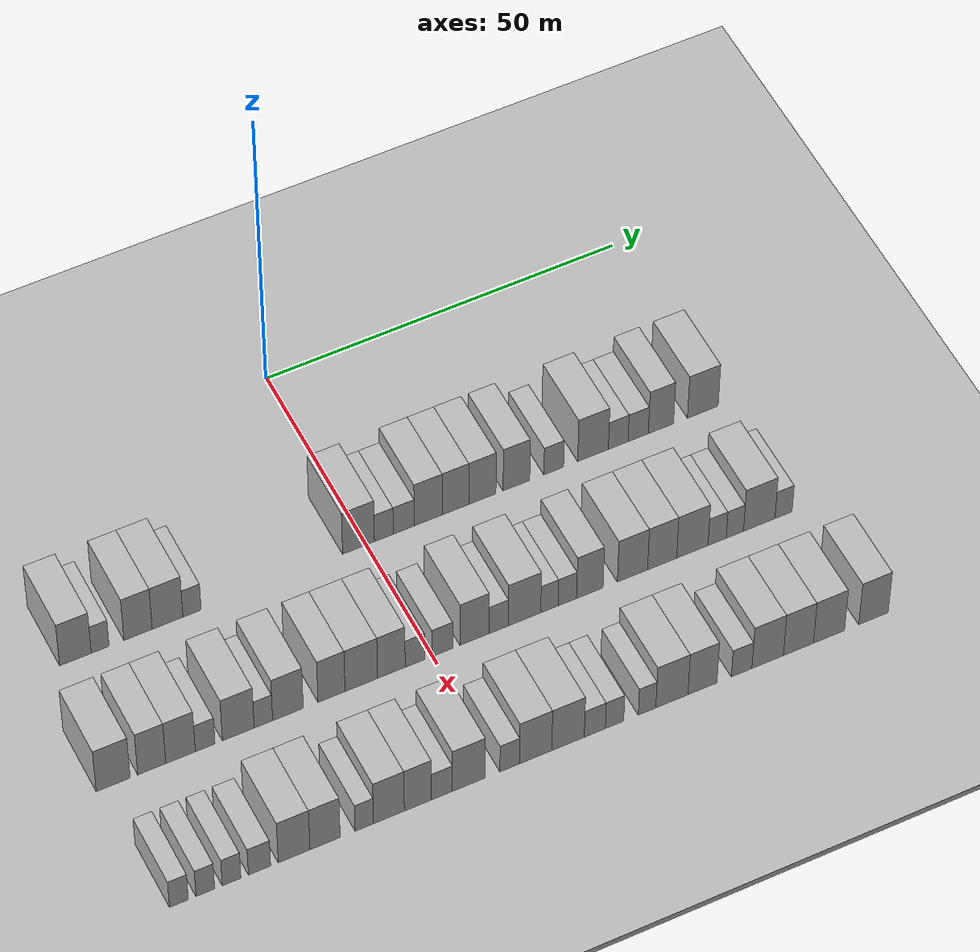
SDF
<sdf version="1.6">
 <world name="default">
  <include><name>ground_plane_1</name><uri>model://HANNAS_ground_plane</uri></include>
  <include>
   <name>ground_plane_2</name>
   <uri>model://HANNAS_ground_plane</uri>
   <pose>100 0 0  0 0 0</pose>
  </include>
  <model name="building_43">
   <static>1</static>
   <pose>25.0000 -39.8312 0 0.000000 0.000000 0.000000</pose>
   <link name="link">
    <pose>0 0 4.50 0 0 0</pose>
    <collision name="collision"><geometry><box><size>10.0000 4.2618 9.0000</size></box></geometry></collision>
    <visual name="visual">
     <cast_shadows>0</cast_shadows>
     <geometry><box><size>10.0000 4.2618 9.0000</size></box></geometry>
     <material>
      <script>
       <uri>model://HANNAS_wall/materials/scripts</uri>
       <uri>model://HANNAS_wall/materials/textures</uri>
       <name>vrc/HANNAS_wall</name>
      </script>
     </material>
    </visual>
   </link>
  </model>
  <model name="building_44">
   <static>1</static>
   <pose>25.0000 -36.4992 0 0.000000 0.000000 0.000000</pose>
   <link name="link">
    <pose>0 0 3.00 0 0 0</pose>
    <collision name="collision"><geometry><box><size>10.0000 2.4022 6.0000</size></box></geometry></collision>
    <visual name="visual">
     <cast_shadows>0</cast_shadows>
     <geometry><box><size>10.0000 2.4022 6.0000</size></box></geometry>
     <material>
      <script>
       <uri>model://HANNAS_wall/materials/scripts</uri>
       <uri>model://HANNAS_wall/materials/textures</uri>
       <name>vrc/HANNAS_wall</name>
      </script>
     </material>
    </visual>
   </link>
  </model>
  <model name="building_45">
   <static>1</static>
   <pose>25.0000 -31.3882 0 0.000000 0.000000 0.000000</pose>
   <link name="link">
    <pose>0 0 4.50 0 0 0</pose>
    <collision name="collision"><geometry><box><size>10.0000 3.8198 9.0000</size></box></geometry></collision>
    <visual name="visual">
     <cast_shadows>0</cast_shadows>
     <geometry><box><size>10.0000 3.8198 9.0000</size></box></geometry>
     <material>
      <script>
       <uri>model://HANNAS_wall/materials/scripts</uri>
       <uri>model://HANNAS_wall/materials/textures</uri>
       <name>vrc/HANNAS_wall</name>
      </script>
     </material>
    </visual>
   </link>
  </model>
  <model name="building_46">
   <static>1</static>
   <pose>25.0000 -27.3918 0 0.000000 0.000000 0.000000</pose>
   <link name="link">
    <pose>0 0 4.50 0 0 0</pose>
    <collision name="collision"><geometry><box><size>10.0000 4.1731 9.0000</size></box></geometry></collision>
    <visual name="visual">
     <cast_shadows>0</cast_shadows>
     <geometry><box><size>10.0000 4.1731 9.0000</size></box></geometry>
     <material>
      <script>
       <uri>model://HANNAS_wall/materials/scripts</uri>
       <uri>model://HANNAS_wall/materials/textures</uri>
       <name>vrc/HANNAS_wall</name>
      </script>
     </material>
    </visual>
   </link>
  </model>
  <model name="building_47">
   <static>1</static>
   <pose>25.0000 -24.0663 0 0.000000 0.000000 0.000000</pose>
   <link name="link">
    <pose>0 0 3.00 0 0 0</pose>
    <collision name="collision"><geometry><box><size>10.0000 2.4779 6.0000</size></box></geometry></collision>
    <visual name="visual">
     <cast_shadows>0</cast_shadows>
     <geometry><box><size>10.0000 2.4779 6.0000</size></box></geometry>
     <material>
      <script>
       <uri>model://HANNAS_wall/materials/scripts</uri>
       <uri>model://HANNAS_wall/materials/textures</uri>
       <name>vrc/HANNAS_wall</name>
      </script>
     </material>
    </visual>
   </link>
  </model>
  <model name="building_48">
   <static>1</static>
   <pose>25.0000 -1.1884 0 0.000000 0.000000 0.000000</pose>
   <link name="link">
    <pose>0 0 4.50 0 0 0</pose>
    <collision name="collision"><geometry><box><size>10.0000 4.4260 9.0000</size></box></geometry></collision>
    <visual name="visual">
     <cast_shadows>0</cast_shadows>
     <geometry><box><size>10.0000 4.4260 9.0000</size></box></geometry>
     <material>
      <script>
       <uri>model://HANNAS_wall/materials/scripts</uri>
       <uri>model://HANNAS_wall/materials/textures</uri>
       <name>vrc/HANNAS_wall</name>
      </script>
     </material>
    </visual>
   </link>
  </model>
  <model name="building_49">
   <static>1</static>
   <pose>25.0000 2.3365 0 0.000000 0.000000 0.000000</pose>
   <link name="link">
    <pose>0 0 3.00 0 0 0</pose>
    <collision name="collision"><geometry><box><size>10.0000 2.6238 6.0000</size></box></geometry></collision>
    <visual name="visual">
     <cast_shadows>0</cast_shadows>
     <geometry><box><size>10.0000 2.6238 6.0000</size></box></geometry>
     <material>
      <script>
       <uri>model://HANNAS_wall/materials/scripts</uri>
       <uri>model://HANNAS_wall/materials/textures</uri>
       <name>vrc/HANNAS_wall</name>
      </script>
     </material>
    </visual>
   </link>
  </model>
  <model name="building_50">
   <static>1</static>
   <pose>25.0000 5.1082 0 0.000000 0.000000 0.000000</pose>
   <link name="link">
    <pose>0 0 3.00 0 0 0</pose>
    <collision name="collision"><geometry><box><size>10.0000 2.9196 6.0000</size></box></geometry></collision>
    <visual name="visual">
     <cast_shadows>0</cast_shadows>
     <geometry><box><size>10.0000 2.9196 6.0000</size></box></geometry>
     <material>
      <script>
       <uri>model://HANNAS_wall/materials/scripts</uri>
       <uri>model://HANNAS_wall/materials/textures</uri>
       <name>vrc/HANNAS_wall</name>
      </script>
     </material>
    </visual>
   </link>
  </model>
  <model name="building_51">
   <static>1</static>
   <pose>25.0000 8.5382 0 0.000000 0.000000 0.000000</pose>
   <link name="link">
    <pose>0 0 4.50 0 0 0</pose>
    <collision name="collision"><geometry><box><size>10.0000 3.9403 9.0000</size></box></geometry></collision>
    <visual name="visual">
     <cast_shadows>0</cast_shadows>
     <geometry><box><size>10.0000 3.9403 9.0000</size></box></geometry>
     <material>
      <script>
       <uri>model://HANNAS_wall/materials/scripts</uri>
       <uri>model://HANNAS_wall/materials/textures</uri>
       <name>vrc/HANNAS_wall</name>
      </script>
     </material>
    </visual>
   </link>
  </model>
  <model name="building_52">
   <static>1</static>
   <pose>25.0000 12.3507 0 0.000000 0.000000 0.000000</pose>
   <link name="link">
    <pose>0 0 4.50 0 0 0</pose>
    <collision name="collision"><geometry><box><size>10.0000 3.6847 9.0000</size></box></geometry></collision>
    <visual name="visual">
     <cast_shadows>0</cast_shadows>
     <geometry><box><size>10.0000 3.6847 9.0000</size></box></geometry>
     <material>
      <script>
       <uri>model://HANNAS_wall/materials/scripts</uri>
       <uri>model://HANNAS_wall/materials/textures</uri>
       <name>vrc/HANNAS_wall</name>
      </script>
     </material>
    </visual>
   </link>
  </model>
  <model name="building_53">
   <static>1</static>
   <pose>25.0000 16.1093 0 0.000000 0.000000 0.000000</pose>
   <link name="link">
    <pose>0 0 4.50 0 0 0</pose>
    <collision name="collision"><geometry><box><size>10.0000 3.8325 9.0000</size></box></geometry></collision>
    <visual name="visual">
     <cast_shadows>0</cast_shadows>
     <geometry><box><size>10.0000 3.8325 9.0000</size></box></geometry>
     <material>
      <script>
       <uri>model://HANNAS_wall/materials/scripts</uri>
       <uri>model://HANNAS_wall/materials/textures</uri>
       <name>vrc/HANNAS_wall</name>
      </script>
     </material>
    </visual>
   </link>
  </model>
  <model name="building_54">
   <static>1</static>
   <pose>25.0000 20.9094 0 0.000000 0.000000 0.000000</pose>
   <link name="link">
    <pose>0 0 4.50 0 0 0</pose>
    <collision name="collision"><geometry><box><size>10.0000 3.7677 9.0000</size></box></geometry></collision>
    <visual name="visual">
     <cast_shadows>0</cast_shadows>
     <geometry><box><size>10.0000 3.7677 9.0000</size></box></geometry>
     <material>
      <script>
       <uri>model://HANNAS_wall/materials/scripts</uri>
       <uri>model://HANNAS_wall/materials/textures</uri>
       <name>vrc/HANNAS_wall</name>
      </script>
     </material>
    </visual>
   </link>
  </model>
  <model name="building_55">
   <static>1</static>
   <pose>25.0000 26.1912 0 0.000000 0.000000 0.000000</pose>
   <link name="link">
    <pose>0 0 3.00 0 0 0</pose>
    <collision name="collision"><geometry><box><size>10.0000 2.7959 6.0000</size></box></geometry></collision>
    <visual name="visual">
     <cast_shadows>0</cast_shadows>
     <geometry><box><size>10.0000 2.7959 6.0000</size></box></geometry>
     <material>
      <script>
       <uri>model://HANNAS_wall/materials/scripts</uri>
       <uri>model://HANNAS_wall/materials/textures</uri>
       <name>vrc/HANNAS_wall</name>
      </script>
     </material>
    </visual>
   </link>
  </model>
  <model name="building_56">
   <static>1</static>
   <pose>25.0000 31.7790 0 0.000000 0.000000 0.000000</pose>
   <link name="link">
    <pose>0 0 4.50 0 0 0</pose>
    <collision name="collision"><geometry><box><size>10.0000 4.3797 9.0000</size></box></geometry></collision>
    <visual name="visual">
     <cast_shadows>0</cast_shadows>
     <geometry><box><size>10.0000 4.3797 9.0000</size></box></geometry>
     <material>
      <script>
       <uri>model://HANNAS_wall/materials/scripts</uri>
       <uri>model://HANNAS_wall/materials/textures</uri>
       <name>vrc/HANNAS_wall</name>
      </script>
     </material>
    </visual>
   </link>
  </model>
  <model name="building_57">
   <static>1</static>
   <pose>25.0000 35.3784 0 0.000000 0.000000 0.000000</pose>
   <link name="link">
    <pose>0 0 3.00 0 0 0</pose>
    <collision name="collision"><geometry><box><size>10.0000 2.8191 6.0000</size></box></geometry></collision>
    <visual name="visual">
     <cast_shadows>0</cast_shadows>
     <geometry><box><size>10.0000 2.8191 6.0000</size></box></geometry>
     <material>
      <script>
       <uri>model://HANNAS_wall/materials/scripts</uri>
       <uri>model://HANNAS_wall/materials/textures</uri>
       <name>vrc/HANNAS_wall</name>
      </script>
     </material>
    </visual>
   </link>
  </model>
  <model name="building_58">
   <static>1</static>
   <pose>25.0000 38.2328 0 0.000000 0.000000 0.000000</pose>
   <link name="link">
    <pose>0 0 3.00 0 0 0</pose>
    <collision name="collision"><geometry><box><size>10.0000 2.8897 6.0000</size></box></geometry></collision>
    <visual name="visual">
     <cast_shadows>0</cast_shadows>
     <geometry><box><size>10.0000 2.8897 6.0000</size></box></geometry>
     <material>
      <script>
       <uri>model://HANNAS_wall/materials/scripts</uri>
       <uri>model://HANNAS_wall/materials/textures</uri>
       <name>vrc/HANNAS_wall</name>
      </script>
     </material>
    </visual>
   </link>
  </model>
  <model name="building_59">
   <static>1</static>
   <pose>25.0000 41.4894 0 0.000000 0.000000 0.000000</pose>
   <link name="link">
    <pose>0 0 4.50 0 0 0</pose>
    <collision name="collision"><geometry><box><size>10.0000 3.6237 9.0000</size></box></geometry></collision>
    <visual name="visual">
     <cast_shadows>0</cast_shadows>
     <geometry><box><size>10.0000 3.6237 9.0000</size></box></geometry>
     <material>
      <script>
       <uri>model://HANNAS_wall/materials/scripts</uri>
       <uri>model://HANNAS_wall/materials/textures</uri>
       <name>vrc/HANNAS_wall</name>
      </script>
     </material>
    </visual>
   </link>
  </model>
  <model name="building_60">
   <static>1</static>
   <pose>25.0000 47.5171 0 0.000000 0.000000 0.000000</pose>
   <link name="link">
    <pose>0 0 4.50 0 0 0</pose>
    <collision name="collision"><geometry><box><size>10.0000 4.4317 9.0000</size></box></geometry></collision>
    <visual name="visual">
     <cast_shadows>0</cast_shadows>
     <geometry><box><size>10.0000 4.4317 9.0000</size></box></geometry>
     <material>
      <script>
       <uri>model://HANNAS_wall/materials/scripts</uri>
       <uri>model://HANNAS_wall/materials/textures</uri>
       <name>vrc/HANNAS_wall</name>
      </script>
     </material>
    </visual>
   </link>
  </model>
  <model name="building_156">
   <static>1</static>
   <pose>44.0000 -43.1893 0 0.000000 0.000000 0.000000</pose>
   <link name="link">
    <pose>0 0 4.50 0 0 0</pose>
    <collision name="collision"><geometry><box><size>10.0000 4.4985 9.0000</size></box></geometry></collision>
    <visual name="visual">
     <cast_shadows>0</cast_shadows>
     <geometry><box><size>10.0000 4.4985 9.0000</size></box></geometry>
     <material>
      <script>
       <uri>model://HANNAS_wall/materials/scripts</uri>
       <uri>model://HANNAS_wall/materials/textures</uri>
       <name>vrc/HANNAS_wall</name>
      </script>
     </material>
    </visual>
   </link>
  </model>
  <model name="building_157">
   <static>1</static>
   <pose>44.0000 -38.0757 0 0.000000 0.000000 0.000000</pose>
   <link name="link">
    <pose>0 0 4.50 0 0 0</pose>
    <collision name="collision"><geometry><box><size>10.0000 3.7287 9.0000</size></box></geometry></collision>
    <visual name="visual">
     <cast_shadows>0</cast_shadows>
     <geometry><box><size>10.0000 3.7287 9.0000</size></box></geometry>
     <material>
      <script>
       <uri>model://HANNAS_wall/materials/scripts</uri>
       <uri>model://HANNAS_wall/materials/textures</uri>
       <name>vrc/HANNAS_wall</name>
      </script>
     </material>
    </visual>
   </link>
  </model>
  <model name="building_158">
   <static>1</static>
   <pose>44.0000 -34.2431 0 0.000000 0.000000 0.000000</pose>
   <link name="link">
    <pose>0 0 4.50 0 0 0</pose>
    <collision name="collision"><geometry><box><size>10.0000 3.9366 9.0000</size></box></geometry></collision>
    <visual name="visual">
     <cast_shadows>0</cast_shadows>
     <geometry><box><size>10.0000 3.9366 9.0000</size></box></geometry>
     <material>
      <script>
       <uri>model://HANNAS_wall/materials/scripts</uri>
       <uri>model://HANNAS_wall/materials/textures</uri>
       <name>vrc/HANNAS_wall</name>
      </script>
     </material>
    </visual>
   </link>
  </model>
  <model name="building_159">
   <static>1</static>
   <pose>44.0000 -30.9606 0 0.000000 0.000000 0.000000</pose>
   <link name="link">
    <pose>0 0 3.00 0 0 0</pose>
    <collision name="collision"><geometry><box><size>10.0000 2.6282 6.0000</size></box></geometry></collision>
    <visual name="visual">
     <cast_shadows>0</cast_shadows>
     <geometry><box><size>10.0000 2.6282 6.0000</size></box></geometry>
     <material>
      <script>
       <uri>model://HANNAS_wall/materials/scripts</uri>
       <uri>model://HANNAS_wall/materials/textures</uri>
       <name>vrc/HANNAS_wall</name>
      </script>
     </material>
    </visual>
   </link>
  </model>
  <model name="building_160">
   <static>1</static>
   <pose>44.0000 -26.5119 0 0.000000 0.000000 0.000000</pose>
   <link name="link">
    <pose>0 0 4.50 0 0 0</pose>
    <collision name="collision"><geometry><box><size>10.0000 4.2694 9.0000</size></box></geometry></collision>
    <visual name="visual">
     <cast_shadows>0</cast_shadows>
     <geometry><box><size>10.0000 4.2694 9.0000</size></box></geometry>
     <material>
      <script>
       <uri>model://HANNAS_wall/materials/scripts</uri>
       <uri>model://HANNAS_wall/materials/textures</uri>
       <name>vrc/HANNAS_wall</name>
      </script>
     </material>
    </visual>
   </link>
  </model>
  <model name="building_161">
   <static>1</static>
   <pose>44.0000 -23.1405 0 0.000000 0.000000 0.000000</pose>
   <link name="link">
    <pose>0 0 3.00 0 0 0</pose>
    <collision name="collision"><geometry><box><size>10.0000 2.4734 6.0000</size></box></geometry></collision>
    <visual name="visual">
     <cast_shadows>0</cast_shadows>
     <geometry><box><size>10.0000 2.4734 6.0000</size></box></geometry>
     <material>
      <script>
       <uri>model://HANNAS_wall/materials/scripts</uri>
       <uri>model://HANNAS_wall/materials/textures</uri>
       <name>vrc/HANNAS_wall</name>
      </script>
     </material>
    </visual>
   </link>
  </model>
  <model name="building_162">
   <static>1</static>
   <pose>44.0000 -19.8362 0 0.000000 0.000000 0.000000</pose>
   <link name="link">
    <pose>0 0 4.50 0 0 0</pose>
    <collision name="collision"><geometry><box><size>10.0000 4.1352 9.0000</size></box></geometry></collision>
    <visual name="visual">
     <cast_shadows>0</cast_shadows>
     <geometry><box><size>10.0000 4.1352 9.0000</size></box></geometry>
     <material>
      <script>
       <uri>model://HANNAS_wall/materials/scripts</uri>
       <uri>model://HANNAS_wall/materials/textures</uri>
       <name>vrc/HANNAS_wall</name>
      </script>
     </material>
    </visual>
   </link>
  </model>
  <model name="building_163">
   <static>1</static>
   <pose>44.0000 -13.9394 0 0.000000 0.000000 0.000000</pose>
   <link name="link">
    <pose>0 0 4.50 0 0 0</pose>
    <collision name="collision"><geometry><box><size>10.0000 3.6583 9.0000</size></box></geometry></collision>
    <visual name="visual">
     <cast_shadows>0</cast_shadows>
     <geometry><box><size>10.0000 3.6583 9.0000</size></box></geometry>
     <material>
      <script>
       <uri>model://HANNAS_wall/materials/scripts</uri>
       <uri>model://HANNAS_wall/materials/textures</uri>
       <name>vrc/HANNAS_wall</name>
      </script>
     </material>
    </visual>
   </link>
  </model>
  <model name="building_164">
   <static>1</static>
   <pose>44.0000 -9.8947 0 0.000000 0.000000 0.000000</pose>
   <link name="link">
    <pose>0 0 4.50 0 0 0</pose>
    <collision name="collision"><geometry><box><size>10.0000 4.4310 9.0000</size></box></geometry></collision>
    <visual name="visual">
     <cast_shadows>0</cast_shadows>
     <geometry><box><size>10.0000 4.4310 9.0000</size></box></geometry>
     <material>
      <script>
       <uri>model://HANNAS_wall/materials/scripts</uri>
       <uri>model://HANNAS_wall/materials/textures</uri>
       <name>vrc/HANNAS_wall</name>
      </script>
     </material>
    </visual>
   </link>
  </model>
  <model name="building_165">
   <static>1</static>
   <pose>44.0000 -5.7948 0 0.000000 0.000000 0.000000</pose>
   <link name="link">
    <pose>0 0 4.50 0 0 0</pose>
    <collision name="collision"><geometry><box><size>10.0000 3.7689 9.0000</size></box></geometry></collision>
    <visual name="visual">
     <cast_shadows>0</cast_shadows>
     <geometry><box><size>10.0000 3.7689 9.0000</size></box></geometry>
     <material>
      <script>
       <uri>model://HANNAS_wall/materials/scripts</uri>
       <uri>model://HANNAS_wall/materials/textures</uri>
       <name>vrc/HANNAS_wall</name>
      </script>
     </material>
    </visual>
   </link>
  </model>
  <model name="building_166">
   <static>1</static>
   <pose>44.0000 -2.5834 0 0.000000 0.000000 0.000000</pose>
   <link name="link">
    <pose>0 0 3.00 0 0 0</pose>
    <collision name="collision"><geometry><box><size>10.0000 2.6539 6.0000</size></box></geometry></collision>
    <visual name="visual">
     <cast_shadows>0</cast_shadows>
     <geometry><box><size>10.0000 2.6539 6.0000</size></box></geometry>
     <material>
      <script>
       <uri>model://HANNAS_wall/materials/scripts</uri>
       <uri>model://HANNAS_wall/materials/textures</uri>
       <name>vrc/HANNAS_wall</name>
      </script>
     </material>
    </visual>
   </link>
  </model>
  <model name="building_167">
   <static>1</static>
   <pose>44.0000 1.1687 0 0.000000 0.000000 0.000000</pose>
   <link name="link">
    <pose>0 0 3.00 0 0 0</pose>
    <collision name="collision"><geometry><box><size>10.0000 2.8502 6.0000</size></box></geometry></collision>
    <visual name="visual">
     <cast_shadows>0</cast_shadows>
     <geometry><box><size>10.0000 2.8502 6.0000</size></box></geometry>
     <material>
      <script>
       <uri>model://HANNAS_wall/materials/scripts</uri>
       <uri>model://HANNAS_wall/materials/textures</uri>
       <name>vrc/HANNAS_wall</name>
      </script>
     </material>
    </visual>
   </link>
  </model>
  <model name="building_168">
   <static>1</static>
   <pose>44.0000 5.5933 0 0.000000 0.000000 0.000000</pose>
   <link name="link">
    <pose>0 0 4.50 0 0 0</pose>
    <collision name="collision"><geometry><box><size>10.0000 3.9991 9.0000</size></box></geometry></collision>
    <visual name="visual">
     <cast_shadows>0</cast_shadows>
     <geometry><box><size>10.0000 3.9991 9.0000</size></box></geometry>
     <material>
      <script>
       <uri>model://HANNAS_wall/materials/scripts</uri>
       <uri>model://HANNAS_wall/materials/textures</uri>
       <name>vrc/HANNAS_wall</name>
      </script>
     </material>
    </visual>
   </link>
  </model>
  <model name="building_169">
   <static>1</static>
   <pose>44.0000 8.9315 0 0.000000 0.000000 0.000000</pose>
   <link name="link">
    <pose>0 0 3.00 0 0 0</pose>
    <collision name="collision"><geometry><box><size>10.0000 2.6774 6.0000</size></box></geometry></collision>
    <visual name="visual">
     <cast_shadows>0</cast_shadows>
     <geometry><box><size>10.0000 2.6774 6.0000</size></box></geometry>
     <material>
      <script>
       <uri>model://HANNAS_wall/materials/scripts</uri>
       <uri>model://HANNAS_wall/materials/textures</uri>
       <name>vrc/HANNAS_wall</name>
      </script>
     </material>
    </visual>
   </link>
  </model>
  <model name="building_170">
   <static>1</static>
   <pose>44.0000 12.5174 0 0.000000 0.000000 0.000000</pose>
   <link name="link">
    <pose>0 0 4.50 0 0 0</pose>
    <collision name="collision"><geometry><box><size>10.0000 4.4943 9.0000</size></box></geometry></collision>
    <visual name="visual">
     <cast_shadows>0</cast_shadows>
     <geometry><box><size>10.0000 4.4943 9.0000</size></box></geometry>
     <material>
      <script>
       <uri>model://HANNAS_wall/materials/scripts</uri>
       <uri>model://HANNAS_wall/materials/textures</uri>
       <name>vrc/HANNAS_wall</name>
      </script>
     </material>
    </visual>
   </link>
  </model>
  <model name="building_171">
   <static>1</static>
   <pose>44.0000 15.9725 0 0.000000 0.000000 0.000000</pose>
   <link name="link">
    <pose>0 0 3.00 0 0 0</pose>
    <collision name="collision"><geometry><box><size>10.0000 2.4158 6.0000</size></box></geometry></collision>
    <visual name="visual">
     <cast_shadows>0</cast_shadows>
     <geometry><box><size>10.0000 2.4158 6.0000</size></box></geometry>
     <material>
      <script>
       <uri>model://HANNAS_wall/materials/scripts</uri>
       <uri>model://HANNAS_wall/materials/textures</uri>
       <name>vrc/HANNAS_wall</name>
      </script>
     </material>
    </visual>
   </link>
  </model>
  <model name="building_172">
   <static>1</static>
   <pose>44.0000 18.4594 0 0.000000 0.000000 0.000000</pose>
   <link name="link">
    <pose>0 0 3.00 0 0 0</pose>
    <collision name="collision"><geometry><box><size>10.0000 2.5581 6.0000</size></box></geometry></collision>
    <visual name="visual">
     <cast_shadows>0</cast_shadows>
     <geometry><box><size>10.0000 2.5581 6.0000</size></box></geometry>
     <material>
      <script>
       <uri>model://HANNAS_wall/materials/scripts</uri>
       <uri>model://HANNAS_wall/materials/textures</uri>
       <name>vrc/HANNAS_wall</name>
      </script>
     </material>
    </visual>
   </link>
  </model>
  <model name="building_173">
   <static>1</static>
   <pose>44.0000 21.5950 0 0.000000 0.000000 0.000000</pose>
   <link name="link">
    <pose>0 0 4.50 0 0 0</pose>
    <collision name="collision"><geometry><box><size>10.0000 3.7132 9.0000</size></box></geometry></collision>
    <visual name="visual">
     <cast_shadows>0</cast_shadows>
     <geometry><box><size>10.0000 3.7132 9.0000</size></box></geometry>
     <material>
      <script>
       <uri>model://HANNAS_wall/materials/scripts</uri>
       <uri>model://HANNAS_wall/materials/textures</uri>
       <name>vrc/HANNAS_wall</name>
      </script>
     </material>
    </visual>
   </link>
  </model>
  <model name="building_174">
   <static>1</static>
   <pose>44.0000 27.5689 0 0.000000 0.000000 0.000000</pose>
   <link name="link">
    <pose>0 0 4.50 0 0 0</pose>
    <collision name="collision"><geometry><box><size>10.0000 4.2346 9.0000</size></box></geometry></collision>
    <visual name="visual">
     <cast_shadows>0</cast_shadows>
     <geometry><box><size>10.0000 4.2346 9.0000</size></box></geometry>
     <material>
      <script>
       <uri>model://HANNAS_wall/materials/scripts</uri>
       <uri>model://HANNAS_wall/materials/textures</uri>
       <name>vrc/HANNAS_wall</name>
      </script>
     </material>
    </visual>
   </link>
  </model>
  <model name="building_175">
   <static>1</static>
   <pose>44.0000 31.7384 0 0.000000 0.000000 0.000000</pose>
   <link name="link">
    <pose>0 0 4.50 0 0 0</pose>
    <collision name="collision"><geometry><box><size>10.0000 4.1044 9.0000</size></box></geometry></collision>
    <visual name="visual">
     <cast_shadows>0</cast_shadows>
     <geometry><box><size>10.0000 4.1044 9.0000</size></box></geometry>
     <material>
      <script>
       <uri>model://HANNAS_wall/materials/scripts</uri>
       <uri>model://HANNAS_wall/materials/textures</uri>
       <name>vrc/HANNAS_wall</name>
      </script>
     </material>
    </visual>
   </link>
  </model>
  <model name="building_176">
   <static>1</static>
   <pose>44.0000 36.0074 0 0.000000 0.000000 0.000000</pose>
   <link name="link">
    <pose>0 0 4.50 0 0 0</pose>
    <collision name="collision"><geometry><box><size>10.0000 4.4337 9.0000</size></box></geometry></collision>
    <visual name="visual">
     <cast_shadows>0</cast_shadows>
     <geometry><box><size>10.0000 4.4337 9.0000</size></box></geometry>
     <material>
      <script>
       <uri>model://HANNAS_wall/materials/scripts</uri>
       <uri>model://HANNAS_wall/materials/textures</uri>
       <name>vrc/HANNAS_wall</name>
      </script>
     </material>
    </visual>
   </link>
  </model>
  <model name="building_177">
   <static>1</static>
   <pose>44.0000 39.5148 0 0.000000 0.000000 0.000000</pose>
   <link name="link">
    <pose>0 0 3.00 0 0 0</pose>
    <collision name="collision"><geometry><box><size>10.0000 2.5810 6.0000</size></box></geometry></collision>
    <visual name="visual">
     <cast_shadows>0</cast_shadows>
     <geometry><box><size>10.0000 2.5810 6.0000</size></box></geometry>
     <material>
      <script>
       <uri>model://HANNAS_wall/materials/scripts</uri>
       <uri>model://HANNAS_wall/materials/textures</uri>
       <name>vrc/HANNAS_wall</name>
      </script>
     </material>
    </visual>
   </link>
  </model>
  <model name="building_178">
   <static>1</static>
   <pose>44.0000 42.0296 0 0.000000 0.000000 0.000000</pose>
   <link name="link">
    <pose>0 0 3.00 0 0 0</pose>
    <collision name="collision"><geometry><box><size>10.0000 2.4487 6.0000</size></box></geometry></collision>
    <visual name="visual">
     <cast_shadows>0</cast_shadows>
     <geometry><box><size>10.0000 2.4487 6.0000</size></box></geometry>
     <material>
      <script>
       <uri>model://HANNAS_wall/materials/scripts</uri>
       <uri>model://HANNAS_wall/materials/textures</uri>
       <name>vrc/HANNAS_wall</name>
      </script>
     </material>
    </visual>
   </link>
  </model>
  <model name="building_179">
   <static>1</static>
   <pose>44.0000 45.4891 0 0.000000 0.000000 0.000000</pose>
   <link name="link">
    <pose>0 0 4.50 0 0 0</pose>
    <collision name="collision"><geometry><box><size>10.0000 4.4703 9.0000</size></box></geometry></collision>
    <visual name="visual">
     <cast_shadows>0</cast_shadows>
     <geometry><box><size>10.0000 4.4703 9.0000</size></box></geometry>
     <material>
      <script>
       <uri>model://HANNAS_wall/materials/scripts</uri>
       <uri>model://HANNAS_wall/materials/textures</uri>
       <name>vrc/HANNAS_wall</name>
      </script>
     </material>
    </visual>
   </link>
  </model>
  <model name="building_180">
   <static>1</static>
   <pose>44.0000 48.9495 0 0.000000 0.000000 0.000000</pose>
   <link name="link">
    <pose>0 0 3.00 0 0 0</pose>
    <collision name="collision"><geometry><box><size>10.0000 2.4504 6.0000</size></box></geometry></collision>
    <visual name="visual">
     <cast_shadows>0</cast_shadows>
     <geometry><box><size>10.0000 2.4504 6.0000</size></box></geometry>
     <material>
      <script>
       <uri>model://HANNAS_wall/materials/scripts</uri>
       <uri>model://HANNAS_wall/materials/textures</uri>
       <name>vrc/HANNAS_wall</name>
      </script>
     </material>
    </visual>
   </link>
  </model>
  <model name="building_274">
   <static>1</static>
   <pose>63.0000 -43.0745 0 0.000000 0.000000 0.000000</pose>
   <link name="link">
    <pose>0 0 3.00 0 0 0</pose>
    <collision name="collision"><geometry><box><size>10.0000 2.4702 6.0000</size></box></geometry></collision>
    <visual name="visual">
     <cast_shadows>0</cast_shadows>
     <geometry><box><size>10.0000 2.4702 6.0000</size></box></geometry>
     <material>
      <script>
       <uri>model://HANNAS_wall/materials/scripts</uri>
       <uri>model://HANNAS_wall/materials/textures</uri>
       <name>vrc/HANNAS_wall</name>
      </script>
     </material>
    </visual>
   </link>
  </model>
  <model name="building_275">
   <static>1</static>
   <pose>63.0000 -39.6158 0 0.000000 0.000000 0.000000</pose>
   <link name="link">
    <pose>0 0 3.00 0 0 0</pose>
    <collision name="collision"><geometry><box><size>10.0000 2.4472 6.0000</size></box></geometry></collision>
    <visual name="visual">
     <cast_shadows>0</cast_shadows>
     <geometry><box><size>10.0000 2.4472 6.0000</size></box></geometry>
     <material>
      <script>
       <uri>model://HANNAS_wall/materials/scripts</uri>
       <uri>model://HANNAS_wall/materials/textures</uri>
       <name>vrc/HANNAS_wall</name>
      </script>
     </material>
    </visual>
   </link>
  </model>
  <model name="building_276">
   <static>1</static>
   <pose>63.0000 -36.1729 0 0.000000 0.000000 0.000000</pose>
   <link name="link">
    <pose>0 0 3.00 0 0 0</pose>
    <collision name="collision"><geometry><box><size>10.0000 2.4386 6.0000</size></box></geometry></collision>
    <visual name="visual">
     <cast_shadows>0</cast_shadows>
     <geometry><box><size>10.0000 2.4386 6.0000</size></box></geometry>
     <material>
      <script>
       <uri>model://HANNAS_wall/materials/scripts</uri>
       <uri>model://HANNAS_wall/materials/textures</uri>
       <name>vrc/HANNAS_wall</name>
      </script>
     </material>
    </visual>
   </link>
  </model>
  <model name="building_277">
   <static>1</static>
   <pose>63.0000 -32.4886 0 0.000000 0.000000 0.000000</pose>
   <link name="link">
    <pose>0 0 3.00 0 0 0</pose>
    <collision name="collision"><geometry><box><size>10.0000 2.9301 6.0000</size></box></geometry></collision>
    <visual name="visual">
     <cast_shadows>0</cast_shadows>
     <geometry><box><size>10.0000 2.9301 6.0000</size></box></geometry>
     <material>
      <script>
       <uri>model://HANNAS_wall/materials/scripts</uri>
       <uri>model://HANNAS_wall/materials/textures</uri>
       <name>vrc/HANNAS_wall</name>
      </script>
     </material>
    </visual>
   </link>
  </model>
  <model name="building_278">
   <static>1</static>
   <pose>63.0000 -27.9201 0 0.000000 0.000000 0.000000</pose>
   <link name="link">
    <pose>0 0 4.50 0 0 0</pose>
    <collision name="collision"><geometry><box><size>10.0000 4.2068 9.0000</size></box></geometry></collision>
    <visual name="visual">
     <cast_shadows>0</cast_shadows>
     <geometry><box><size>10.0000 4.2068 9.0000</size></box></geometry>
     <material>
      <script>
       <uri>model://HANNAS_wall/materials/scripts</uri>
       <uri>model://HANNAS_wall/materials/textures</uri>
       <name>vrc/HANNAS_wall</name>
      </script>
     </material>
    </visual>
   </link>
  </model>
  <model name="building_279">
   <static>1</static>
   <pose>63.0000 -23.8160 0 0.000000 0.000000 0.000000</pose>
   <link name="link">
    <pose>0 0 4.50 0 0 0</pose>
    <collision name="collision"><geometry><box><size>10.0000 4.0014 9.0000</size></box></geometry></collision>
    <visual name="visual">
     <cast_shadows>0</cast_shadows>
     <geometry><box><size>10.0000 4.0014 9.0000</size></box></geometry>
     <material>
      <script>
       <uri>model://HANNAS_wall/materials/scripts</uri>
       <uri>model://HANNAS_wall/materials/textures</uri>
       <name>vrc/HANNAS_wall</name>
      </script>
     </material>
    </visual>
   </link>
  </model>
  <model name="building_280">
   <static>1</static>
   <pose>63.0000 -18.5930 0 0.000000 0.000000 0.000000</pose>
   <link name="link">
    <pose>0 0 3.00 0 0 0</pose>
    <collision name="collision"><geometry><box><size>10.0000 2.4447 6.0000</size></box></geometry></collision>
    <visual name="visual">
     <cast_shadows>0</cast_shadows>
     <geometry><box><size>10.0000 2.4447 6.0000</size></box></geometry>
     <material>
      <script>
       <uri>model://HANNAS_wall/materials/scripts</uri>
       <uri>model://HANNAS_wall/materials/textures</uri>
       <name>vrc/HANNAS_wall</name>
      </script>
     </material>
    </visual>
   </link>
  </model>
  <model name="building_281">
   <static>1</static>
   <pose>63.0000 -15.3080 0 0.000000 0.000000 0.000000</pose>
   <link name="link">
    <pose>0 0 4.50 0 0 0</pose>
    <collision name="collision"><geometry><box><size>10.0000 4.1254 9.0000</size></box></geometry></collision>
    <visual name="visual">
     <cast_shadows>0</cast_shadows>
     <geometry><box><size>10.0000 4.1254 9.0000</size></box></geometry>
     <material>
      <script>
       <uri>model://HANNAS_wall/materials/scripts</uri>
       <uri>model://HANNAS_wall/materials/textures</uri>
       <name>vrc/HANNAS_wall</name>
      </script>
     </material>
    </visual>
   </link>
  </model>
  <model name="building_282">
   <static>1</static>
   <pose>63.0000 -11.4247 0 0.000000 0.000000 0.000000</pose>
   <link name="link">
    <pose>0 0 4.50 0 0 0</pose>
    <collision name="collision"><geometry><box><size>10.0000 3.6410 9.0000</size></box></geometry></collision>
    <visual name="visual">
     <cast_shadows>0</cast_shadows>
     <geometry><box><size>10.0000 3.6410 9.0000</size></box></geometry>
     <material>
      <script>
       <uri>model://HANNAS_wall/materials/scripts</uri>
       <uri>model://HANNAS_wall/materials/textures</uri>
       <name>vrc/HANNAS_wall</name>
      </script>
     </material>
    </visual>
   </link>
  </model>
  <model name="building_283">
   <static>1</static>
   <pose>63.0000 -8.1879 0 0.000000 0.000000 0.000000</pose>
   <link name="link">
    <pose>0 0 3.00 0 0 0</pose>
    <collision name="collision"><geometry><box><size>10.0000 2.8327 6.0000</size></box></geometry></collision>
    <visual name="visual">
     <cast_shadows>0</cast_shadows>
     <geometry><box><size>10.0000 2.8327 6.0000</size></box></geometry>
     <material>
      <script>
       <uri>model://HANNAS_wall/materials/scripts</uri>
       <uri>model://HANNAS_wall/materials/textures</uri>
       <name>vrc/HANNAS_wall</name>
      </script>
     </material>
    </visual>
   </link>
  </model>
  <model name="building_284">
   <static>1</static>
   <pose>63.0000 -4.5696 0 0.000000 0.000000 0.000000</pose>
   <link name="link">
    <pose>0 0 4.50 0 0 0</pose>
    <collision name="collision"><geometry><box><size>10.0000 4.4039 9.0000</size></box></geometry></collision>
    <visual name="visual">
     <cast_shadows>0</cast_shadows>
     <geometry><box><size>10.0000 4.4039 9.0000</size></box></geometry>
     <material>
      <script>
       <uri>model://HANNAS_wall/materials/scripts</uri>
       <uri>model://HANNAS_wall/materials/textures</uri>
       <name>vrc/HANNAS_wall</name>
      </script>
     </material>
    </visual>
   </link>
  </model>
  <model name="building_285">
   <static>1</static>
   <pose>63.0000 0.9605 0 0.000000 0.000000 0.000000</pose>
   <link name="link">
    <pose>0 0 3.00 0 0 0</pose>
    <collision name="collision"><geometry><box><size>10.0000 2.6564 6.0000</size></box></geometry></collision>
    <visual name="visual">
     <cast_shadows>0</cast_shadows>
     <geometry><box><size>10.0000 2.6564 6.0000</size></box></geometry>
     <material>
      <script>
       <uri>model://HANNAS_wall/materials/scripts</uri>
       <uri>model://HANNAS_wall/materials/textures</uri>
       <name>vrc/HANNAS_wall</name>
      </script>
     </material>
    </visual>
   </link>
  </model>
  <model name="building_286">
   <static>1</static>
   <pose>63.0000 4.4821 0 0.000000 0.000000 0.000000</pose>
   <link name="link">
    <pose>0 0 4.50 0 0 0</pose>
    <collision name="collision"><geometry><box><size>10.0000 4.3867 9.0000</size></box></geometry></collision>
    <visual name="visual">
     <cast_shadows>0</cast_shadows>
     <geometry><box><size>10.0000 4.3867 9.0000</size></box></geometry>
     <material>
      <script>
       <uri>model://HANNAS_wall/materials/scripts</uri>
       <uri>model://HANNAS_wall/materials/textures</uri>
       <name>vrc/HANNAS_wall</name>
      </script>
     </material>
    </visual>
   </link>
  </model>
  <model name="building_287">
   <static>1</static>
   <pose>63.0000 8.8987 0 0.000000 0.000000 0.000000</pose>
   <link name="link">
    <pose>0 0 4.50 0 0 0</pose>
    <collision name="collision"><geometry><box><size>10.0000 4.4465 9.0000</size></box></geometry></collision>
    <visual name="visual">
     <cast_shadows>0</cast_shadows>
     <geometry><box><size>10.0000 4.4465 9.0000</size></box></geometry>
     <material>
      <script>
       <uri>model://HANNAS_wall/materials/scripts</uri>
       <uri>model://HANNAS_wall/materials/textures</uri>
       <name>vrc/HANNAS_wall</name>
      </script>
     </material>
    </visual>
   </link>
  </model>
  <model name="building_288">
   <static>1</static>
   <pose>63.0000 12.5663 0 0.000000 0.000000 0.000000</pose>
   <link name="link">
    <pose>0 0 3.00 0 0 0</pose>
    <collision name="collision"><geometry><box><size>10.0000 2.8886 6.0000</size></box></geometry></collision>
    <visual name="visual">
     <cast_shadows>0</cast_shadows>
     <geometry><box><size>10.0000 2.8886 6.0000</size></box></geometry>
     <material>
      <script>
       <uri>model://HANNAS_wall/materials/scripts</uri>
       <uri>model://HANNAS_wall/materials/textures</uri>
       <name>vrc/HANNAS_wall</name>
      </script>
     </material>
    </visual>
   </link>
  </model>
  <model name="building_289">
   <static>1</static>
   <pose>63.0000 15.2698 0 0.000000 0.000000 0.000000</pose>
   <link name="link">
    <pose>0 0 3.00 0 0 0</pose>
    <collision name="collision"><geometry><box><size>10.0000 2.5185 6.0000</size></box></geometry></collision>
    <visual name="visual">
     <cast_shadows>0</cast_shadows>
     <geometry><box><size>10.0000 2.5185 6.0000</size></box></geometry>
     <material>
      <script>
       <uri>model://HANNAS_wall/materials/scripts</uri>
       <uri>model://HANNAS_wall/materials/textures</uri>
       <name>vrc/HANNAS_wall</name>
      </script>
     </material>
    </visual>
   </link>
  </model>
  <model name="building_290">
   <static>1</static>
   <pose>63.0000 19.7379 0 0.000000 0.000000 0.000000</pose>
   <link name="link">
    <pose>0 0 3.00 0 0 0</pose>
    <collision name="collision"><geometry><box><size>10.0000 2.4177 6.0000</size></box></geometry></collision>
    <visual name="visual">
     <cast_shadows>0</cast_shadows>
     <geometry><box><size>10.0000 2.4177 6.0000</size></box></geometry>
     <material>
      <script>
       <uri>model://HANNAS_wall/materials/scripts</uri>
       <uri>model://HANNAS_wall/materials/textures</uri>
       <name>vrc/HANNAS_wall</name>
      </script>
     </material>
    </visual>
   </link>
  </model>
  <model name="building_291">
   <static>1</static>
   <pose>63.0000 23.1680 0 0.000000 0.000000 0.000000</pose>
   <link name="link">
    <pose>0 0 4.50 0 0 0</pose>
    <collision name="collision"><geometry><box><size>10.0000 4.4425 9.0000</size></box></geometry></collision>
    <visual name="visual">
     <cast_shadows>0</cast_shadows>
     <geometry><box><size>10.0000 4.4425 9.0000</size></box></geometry>
     <material>
      <script>
       <uri>model://HANNAS_wall/materials/scripts</uri>
       <uri>model://HANNAS_wall/materials/textures</uri>
       <name>vrc/HANNAS_wall</name>
      </script>
     </material>
    </visual>
   </link>
  </model>
  <model name="building_292">
   <static>1</static>
   <pose>63.0000 27.3973 0 0.000000 0.000000 0.000000</pose>
   <link name="link">
    <pose>0 0 4.50 0 0 0</pose>
    <collision name="collision"><geometry><box><size>10.0000 4.0162 9.0000</size></box></geometry></collision>
    <visual name="visual">
     <cast_shadows>0</cast_shadows>
     <geometry><box><size>10.0000 4.0162 9.0000</size></box></geometry>
     <material>
      <script>
       <uri>model://HANNAS_wall/materials/scripts</uri>
       <uri>model://HANNAS_wall/materials/textures</uri>
       <name>vrc/HANNAS_wall</name>
      </script>
     </material>
    </visual>
   </link>
  </model>
  <model name="building_293">
   <static>1</static>
   <pose>63.0000 32.8392 0 0.000000 0.000000 0.000000</pose>
   <link name="link">
    <pose>0 0 3.00 0 0 0</pose>
    <collision name="collision"><geometry><box><size>10.0000 2.8677 6.0000</size></box></geometry></collision>
    <visual name="visual">
     <cast_shadows>0</cast_shadows>
     <geometry><box><size>10.0000 2.8677 6.0000</size></box></geometry>
     <material>
      <script>
       <uri>model://HANNAS_wall/materials/scripts</uri>
       <uri>model://HANNAS_wall/materials/textures</uri>
       <name>vrc/HANNAS_wall</name>
      </script>
     </material>
    </visual>
   </link>
  </model>
  <model name="building_294">
   <static>1</static>
   <pose>63.0000 36.4765 0 0.000000 0.000000 0.000000</pose>
   <link name="link">
    <pose>0 0 4.50 0 0 0</pose>
    <collision name="collision"><geometry><box><size>10.0000 4.4069 9.0000</size></box></geometry></collision>
    <visual name="visual">
     <cast_shadows>0</cast_shadows>
     <geometry><box><size>10.0000 4.4069 9.0000</size></box></geometry>
     <material>
      <script>
       <uri>model://HANNAS_wall/materials/scripts</uri>
       <uri>model://HANNAS_wall/materials/textures</uri>
       <name>vrc/HANNAS_wall</name>
      </script>
     </material>
    </visual>
   </link>
  </model>
  <model name="building_295">
   <static>1</static>
   <pose>63.0000 40.7836 0 0.000000 0.000000 0.000000</pose>
   <link name="link">
    <pose>0 0 4.50 0 0 0</pose>
    <collision name="collision"><geometry><box><size>10.0000 4.2073 9.0000</size></box></geometry></collision>
    <visual name="visual">
     <cast_shadows>0</cast_shadows>
     <geometry><box><size>10.0000 4.2073 9.0000</size></box></geometry>
     <material>
      <script>
       <uri>model://HANNAS_wall/materials/scripts</uri>
       <uri>model://HANNAS_wall/materials/textures</uri>
       <name>vrc/HANNAS_wall</name>
      </script>
     </material>
    </visual>
   </link>
  </model>
  <model name="building_296">
   <static>1</static>
   <pose>63.0000 45.0753 0 0.000000 0.000000 0.000000</pose>
   <link name="link">
    <pose>0 0 4.50 0 0 0</pose>
    <collision name="collision"><geometry><box><size>10.0000 4.3761 9.0000</size></box></geometry></collision>
    <visual name="visual">
     <cast_shadows>0</cast_shadows>
     <geometry><box><size>10.0000 4.3761 9.0000</size></box></geometry>
     <material>
      <script>
       <uri>model://HANNAS_wall/materials/scripts</uri>
       <uri>model://HANNAS_wall/materials/textures</uri>
       <name>vrc/HANNAS_wall</name>
      </script>
     </material>
    </visual>
   </link>
  </model>
  <model name="building_297">
   <static>1</static>
   <pose>63.0000 51.3409 0 0.000000 0.000000 0.000000</pose>
   <link name="link">
    <pose>0 0 4.50 0 0 0</pose>
    <collision name="collision"><geometry><box><size>10.0000 4.1551 9.0000</size></box></geometry></collision>
    <visual name="visual">
     <cast_shadows>0</cast_shadows>
     <geometry><box><size>10.0000 4.1551 9.0000</size></box></geometry>
     <material>
      <script>
       <uri>model://HANNAS_wall/materials/scripts</uri>
       <uri>model://HANNAS_wall/materials/textures</uri>
       <name>vrc/HANNAS_wall</name>
      </script>
     </material>
    </visual>
   </link>
  </model>
 </world>
</sdf>
